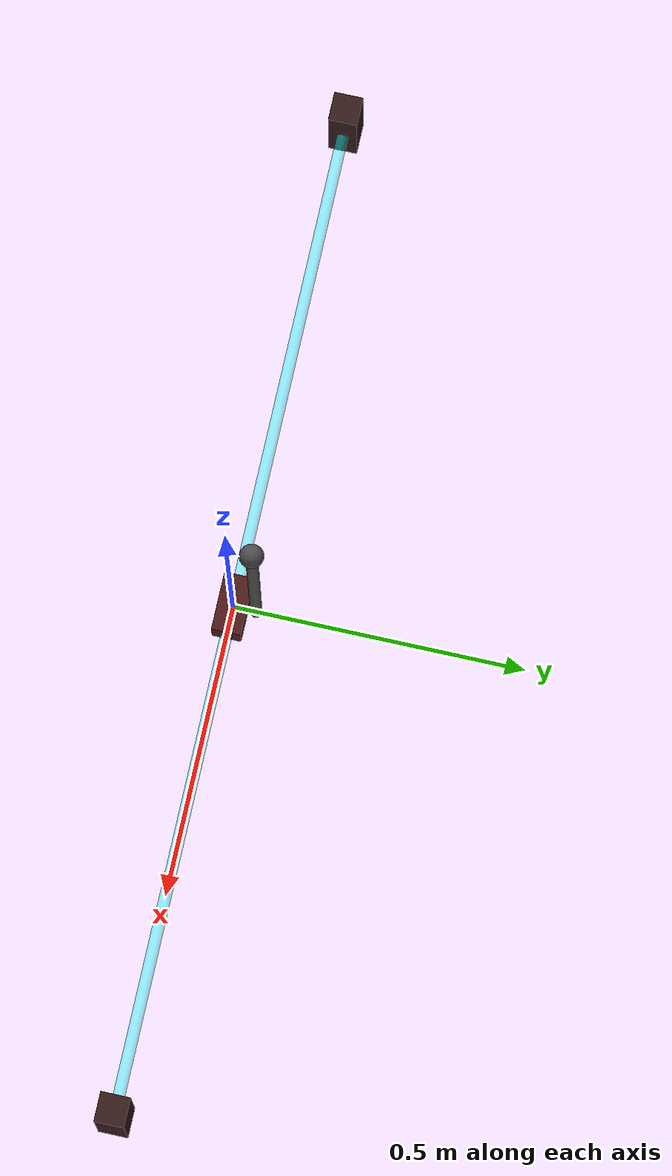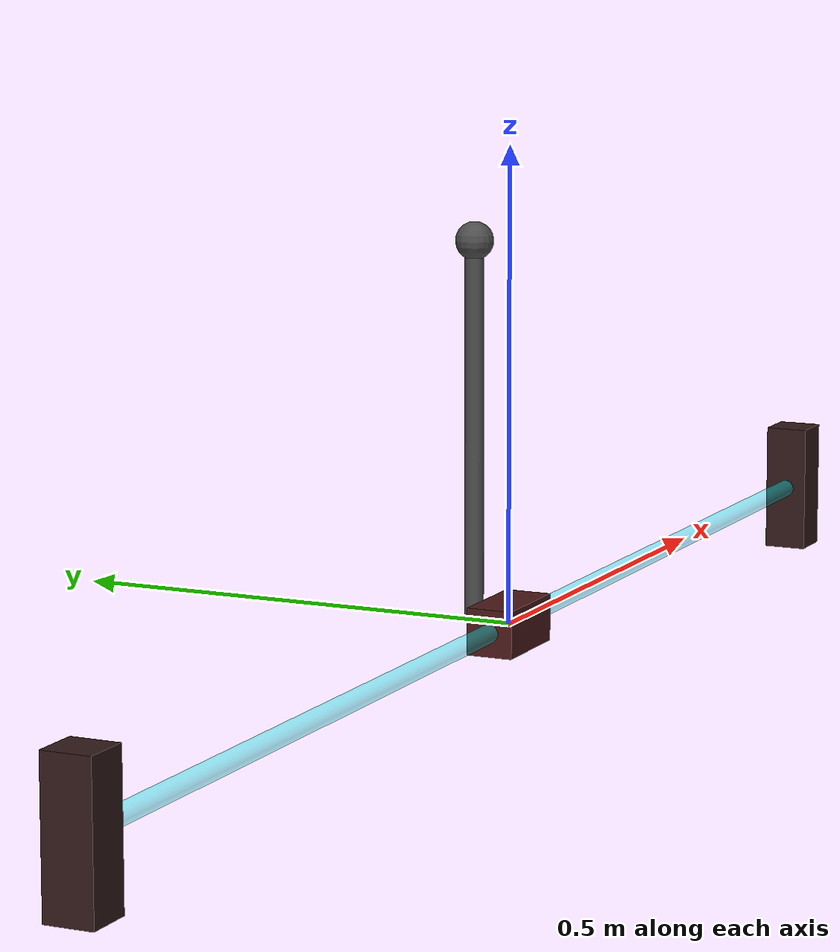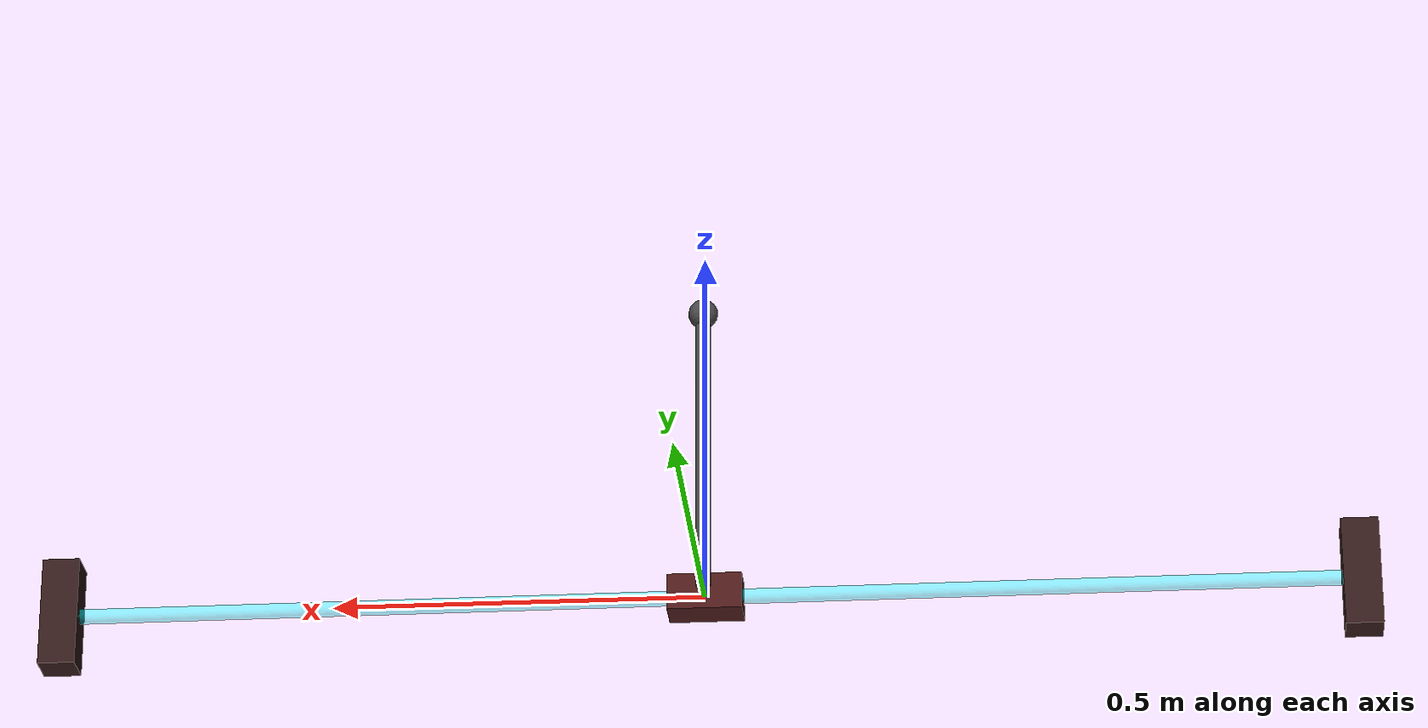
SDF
<?xml version="1.0" encoding="UTF-8"?>
<sdf version="1.11">
  <model name="CartPole">
    <joint name="fix_to_world" type="fixed">
      <parent>world</parent>
      <child>base</child>
    </joint>

    <link name="base">
      <visual name="shaft">
        <pose degrees="true">0 0 0   0 90 0</pose>
        <geometry>
          <cylinder>
            <length>1.70</length>
            <radius>0.01</radius>
          </cylinder>
        </geometry>
        <material>
          <diffuse>0.0 1.0 1.0 0.4</diffuse>
          <specular>1.0 1.0 1.0 0.4</specular>
        </material>
      </visual>
      <visual name="lower_limit">
        <pose>-0.870 0 0   0 0 0</pose>
        <geometry>
          <box>
            <size>0.05 0.05 0.15</size>
          </box>
        </geometry>
        <material>
          <diffuse>0.2 0.1 0.1</diffuse>
          <specular>0.2 0.2 0.2</specular>
        </material>
      </visual>
      <visual name="upper_limit">
        <pose>0.870 0 0   0 0 0</pose>
        <geometry>
          <box>
            <size>0.05 0.05 0.15</size>
          </box>
        </geometry>
        <material>
          <diffuse>0.2 0.1 0.1</diffuse>
          <specular>0.2 0.2 0.2</specular>
        </material>
      </visual>
    </link>
    <joint name="cart_joint" type="prismatic">
      <parent>base</parent>
      <child>cart</child>
      <axis>
        <xyz>1 0 0</xyz>
        <limit>
          <lower>-0.80</lower>
          <upper>0.80</upper>
          <effort>100</effort>
        </limit>
      </axis>
    </joint>

    <link name="cart">
      <inertial auto="true"/>
      <visual name="visual">
        <geometry>
          <box>
            <size>0.1 0.05 0.05</size>
          </box>
        </geometry>
        <material>
          <diffuse>0.3 0.1 0.1</diffuse>
          <specular>0.1 0.1 0.1</specular>
        </material>
      </visual>
      <collision name="collision">
        <density>1000</density>
        <geometry>
          <box>
            <size>0.1 0.05 0.05</size>
          </box>
        </geometry>
      </collision>
    </link>

    <joint name="pole_joint" type="revolute">
      <pose relative_to="cart"/>
      <parent>cart</parent>
      <child>pole</child>
      <axis>
        <xyz>0 1 0</xyz>
      </axis>
    </joint>

    <link name="pole">
      <pose>0 0.040 0.2   0 0 0</pose>
      <inertial auto="true"/>
      <visual name="visual">
        <geometry>
          <cylinder>
            <length>0.4</length>
            <radius>0.01</radius>
          </cylinder>
        </geometry>
        <material>
          <diffuse>0.3 0.3 0.3</diffuse>
        </material>
      </visual>
      <collision name="collision">
        <density>1</density>
        <geometry>
          <cylinder>
            <length>0.4</length>
            <radius>0.01</radius>
          </cylinder>
        </geometry>
      </collision>
    </link>

    <joint name="pole_point_mass_joint" type="fixed">
      <parent>pole</parent>
      <child>point_mass</child>
    </joint>

    <link name="point_mass">
      <pose relative_to="pole">0 0.0 0.2   0 0 0</pose>
      <inertial auto="true"/>
      <visual name="visual">
        <geometry>
          <sphere>
            <radius>0.02</radius>
          </sphere>
        </geometry>
        <material>
          <diffuse>0.3 0.3 0.3</diffuse>
        </material>
      </visual>
      <collision name="collision">
        <density>1000</density>
        <geometry>
          <sphere>
            <radius>0.02</radius>
          </sphere>
        </geometry>
      </collision>
    </link>

    <plugin filename="gz-sim-python-system-loader-system" name="gz::sim::systems::PythonSystemLoader">
      <module_name>cart_pole_controller</module_name>
      <initial_angle>0.2</initial_angle>
      <reset_angle_topic>cart_pole/reset_angle</reset_angle_topic>
      <reload_controller_topic>cart_pole/reload_controller</reload_controller_topic>
      <state_topic>cart_pole/state</state_topic>
    </plugin>
  </model>
</sdf>
